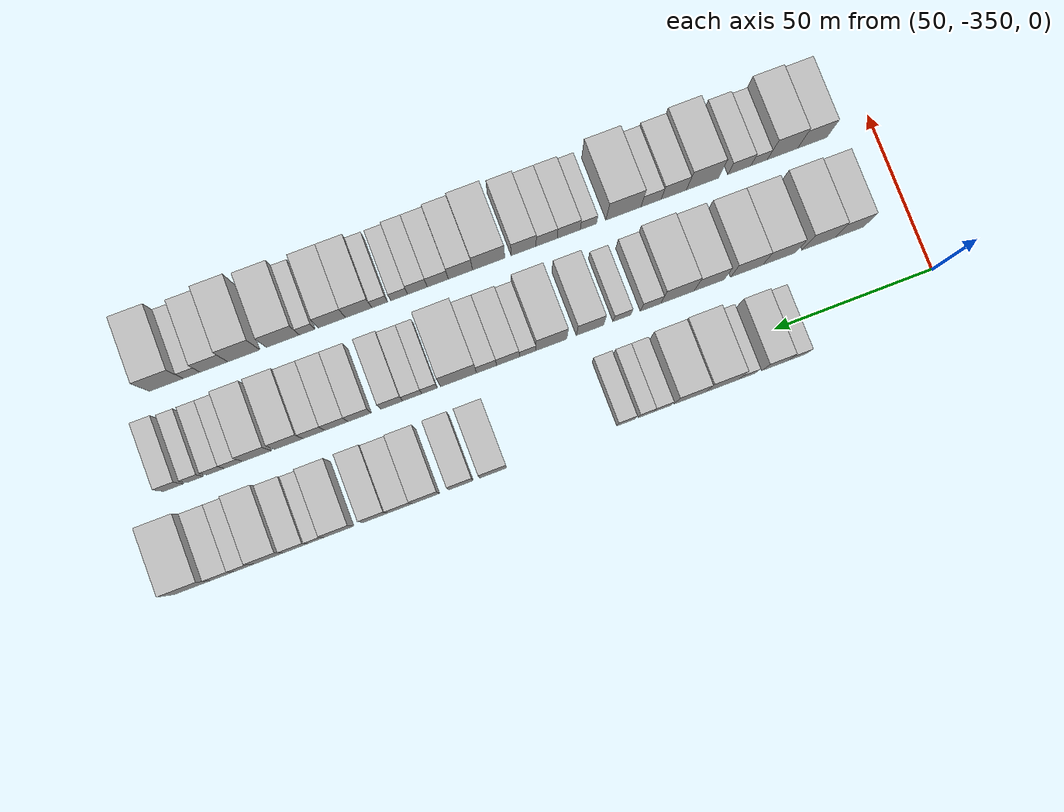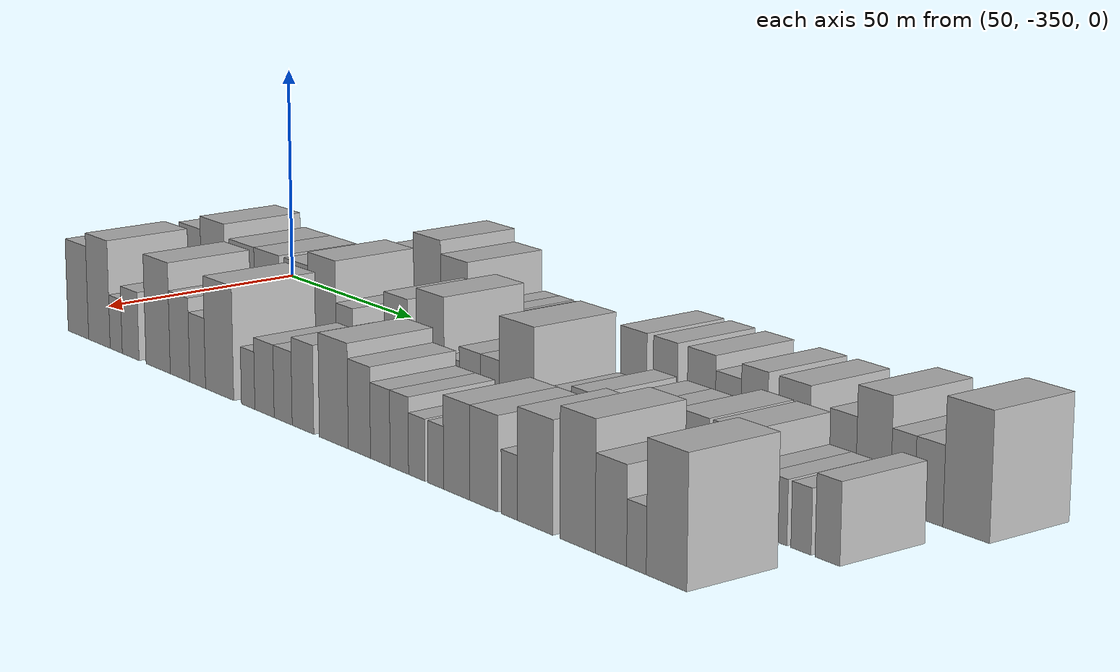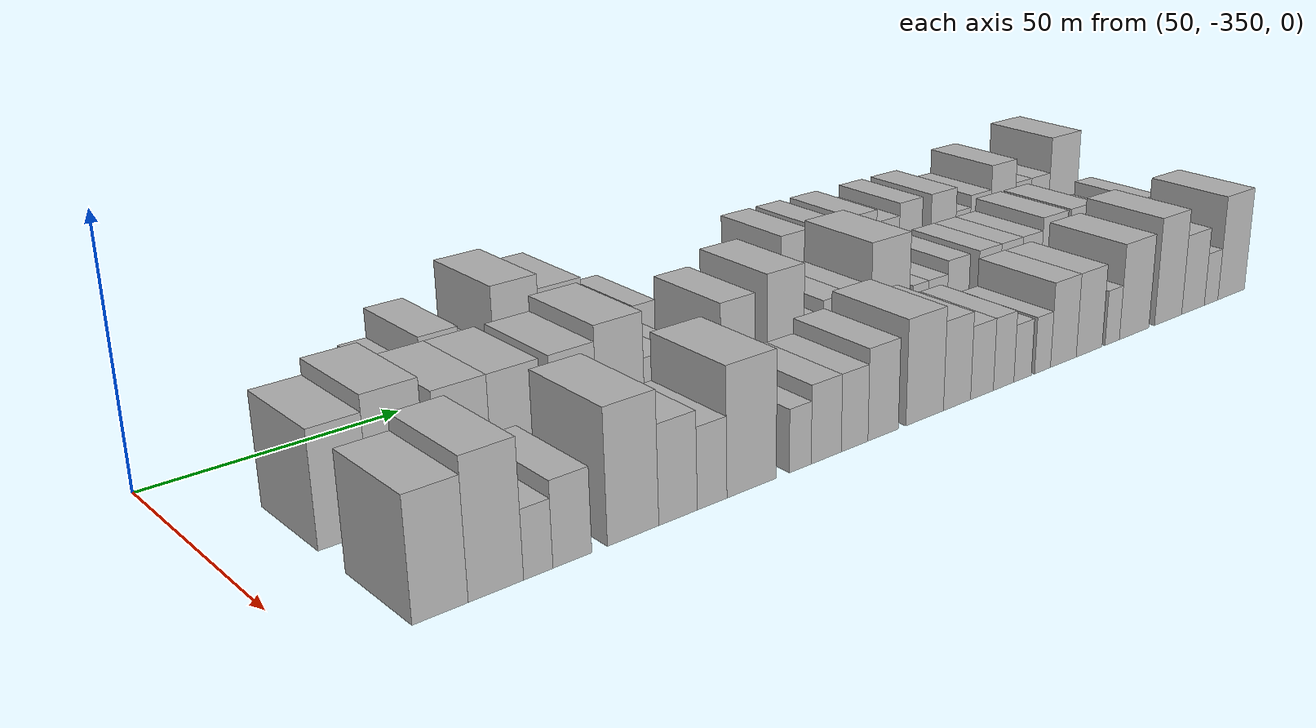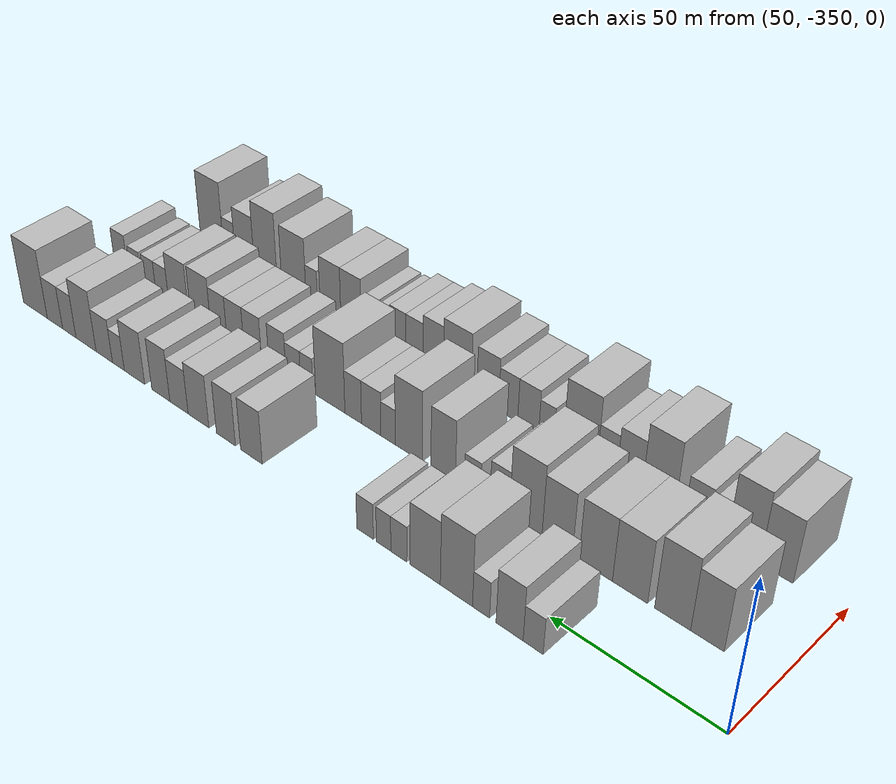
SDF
<sdf version="1.6">
 <world name="default">
  <model name="building_1">
   <static>1</static>
   <pose>50.0000 -303.0486 0 0.000000 0.000000 0.000000</pose>
   <link name="link">
    <pose>0 0 6.00 0 0 0</pose>
    <collision name="collision"><geometry><box><size>20.0000 5.9676 12.0000</size></box></geometry></collision>
    <visual name="visual">
     <cast_shadows>0</cast_shadows>
     <geometry><box><size>20.0000 5.9676 12.0000</size></box></geometry>
     <material>
      <script>
       <uri>model://HANNAS_wall/materials/scripts</uri>
       <uri>model://HANNAS_wall/materials/textures</uri>
       <name>vrc/HANNAS_wall</name>
      </script>
     </material>
    </visual>
   </link>
  </model>
  <model name="building_2">
   <static>1</static>
   <pose>50.0000 -295.9503 0 0.000000 0.000000 0.000000</pose>
   <link name="link">
    <pose>0 0 9.00 0 0 0</pose>
    <collision name="collision"><geometry><box><size>20.0000 8.2292 18.0000</size></box></geometry></collision>
    <visual name="visual">
     <cast_shadows>0</cast_shadows>
     <geometry><box><size>20.0000 8.2292 18.0000</size></box></geometry>
     <material>
      <script>
       <uri>model://HANNAS_wall/materials/scripts</uri>
       <uri>model://HANNAS_wall/materials/textures</uri>
       <name>vrc/HANNAS_wall</name>
      </script>
     </material>
    </visual>
   </link>
  </model>
  <model name="building_3">
   <static>1</static>
   <pose>50.0000 -287.1823 0 0.000000 0.000000 0.000000</pose>
   <link name="link">
    <pose>0 0 6.00 0 0 0</pose>
    <collision name="collision"><geometry><box><size>20.0000 5.3067 12.0000</size></box></geometry></collision>
    <visual name="visual">
     <cast_shadows>0</cast_shadows>
     <geometry><box><size>20.0000 5.3067 12.0000</size></box></geometry>
     <material>
      <script>
       <uri>model://HANNAS_wall/materials/scripts</uri>
       <uri>model://HANNAS_wall/materials/textures</uri>
       <name>vrc/HANNAS_wall</name>
      </script>
     </material>
    </visual>
   </link>
  </model>
  <model name="building_4">
   <static>1</static>
   <pose>50.0000 -279.3959 0 0.000000 0.000000 0.000000</pose>
   <link name="link">
    <pose>0 0 12.00 0 0 0</pose>
    <collision name="collision"><geometry><box><size>20.0000 10.2663 24.0000</size></box></geometry></collision>
    <visual name="visual">
     <cast_shadows>0</cast_shadows>
     <geometry><box><size>20.0000 10.2663 24.0000</size></box></geometry>
     <material>
      <script>
       <uri>model://HANNAS_wall/materials/scripts</uri>
       <uri>model://HANNAS_wall/materials/textures</uri>
       <name>vrc/HANNAS_wall</name>
      </script>
     </material>
    </visual>
   </link>
  </model>
  <model name="building_5">
   <static>1</static>
   <pose>50.0000 -269.2854 0 0.000000 0.000000 0.000000</pose>
   <link name="link">
    <pose>0 0 10.50 0 0 0</pose>
    <collision name="collision"><geometry><box><size>20.0000 9.9546 21.0000</size></box></geometry></collision>
    <visual name="visual">
     <cast_shadows>0</cast_shadows>
     <geometry><box><size>20.0000 9.9546 21.0000</size></box></geometry>
     <material>
      <script>
       <uri>model://HANNAS_wall/materials/scripts</uri>
       <uri>model://HANNAS_wall/materials/textures</uri>
       <name>vrc/HANNAS_wall</name>
      </script>
     </material>
    </visual>
   </link>
  </model>
  <model name="building_6">
   <static>1</static>
   <pose>50.0000 -260.6441 0 0.000000 0.000000 0.000000</pose>
   <link name="link">
    <pose>0 0 6.00 0 0 0</pose>
    <collision name="collision"><geometry><box><size>20.0000 5.3280 12.0000</size></box></geometry></collision>
    <visual name="visual">
     <cast_shadows>0</cast_shadows>
     <geometry><box><size>20.0000 5.3280 12.0000</size></box></geometry>
     <material>
      <script>
       <uri>model://HANNAS_wall/materials/scripts</uri>
       <uri>model://HANNAS_wall/materials/textures</uri>
       <name>vrc/HANNAS_wall</name>
      </script>
     </material>
    </visual>
   </link>
  </model>
  <model name="building_7">
   <static>1</static>
   <pose>50.0000 -255.5256 0 0.000000 0.000000 0.000000</pose>
   <link name="link">
    <pose>0 0 6.00 0 0 0</pose>
    <collision name="collision"><geometry><box><size>20.0000 4.9091 12.0000</size></box></geometry></collision>
    <visual name="visual">
     <cast_shadows>0</cast_shadows>
     <geometry><box><size>20.0000 4.9091 12.0000</size></box></geometry>
     <material>
      <script>
       <uri>model://HANNAS_wall/materials/scripts</uri>
       <uri>model://HANNAS_wall/materials/textures</uri>
       <name>vrc/HANNAS_wall</name>
      </script>
     </material>
    </visual>
   </link>
  </model>
  <model name="building_8">
   <static>1</static>
   <pose>50.0000 -249.2155 0 0.000000 0.000000 0.000000</pose>
   <link name="link">
    <pose>0 0 6.00 0 0 0</pose>
    <collision name="collision"><geometry><box><size>20.0000 5.7110 12.0000</size></box></geometry></collision>
    <visual name="visual">
     <cast_shadows>0</cast_shadows>
     <geometry><box><size>20.0000 5.7110 12.0000</size></box></geometry>
     <material>
      <script>
       <uri>model://HANNAS_wall/materials/scripts</uri>
       <uri>model://HANNAS_wall/materials/textures</uri>
       <name>vrc/HANNAS_wall</name>
      </script>
     </material>
    </visual>
   </link>
  </model>
  <model name="building_9">
   <static>1</static>
   <pose>50.0000 -207.9036 0 0.000000 0.000000 0.000000</pose>
   <link name="link">
    <pose>0 0 9.00 0 0 0</pose>
    <collision name="collision"><geometry><box><size>20.0000 8.3043 18.0000</size></box></geometry></collision>
    <visual name="visual">
     <cast_shadows>0</cast_shadows>
     <geometry><box><size>20.0000 8.3043 18.0000</size></box></geometry>
     <material>
      <script>
       <uri>model://HANNAS_wall/materials/scripts</uri>
       <uri>model://HANNAS_wall/materials/textures</uri>
       <name>vrc/HANNAS_wall</name>
      </script>
     </material>
    </visual>
   </link>
  </model>
  <model name="building_10">
   <static>1</static>
   <pose>50.0000 -198.0247 0 0.000000 0.000000 0.000000</pose>
   <link name="link">
    <pose>0 0 9.00 0 0 0</pose>
    <collision name="collision"><geometry><box><size>20.0000 7.4536 18.0000</size></box></geometry></collision>
    <visual name="visual">
     <cast_shadows>0</cast_shadows>
     <geometry><box><size>20.0000 7.4536 18.0000</size></box></geometry>
     <material>
      <script>
       <uri>model://HANNAS_wall/materials/scripts</uri>
       <uri>model://HANNAS_wall/materials/textures</uri>
       <name>vrc/HANNAS_wall</name>
      </script>
     </material>
    </visual>
   </link>
  </model>
  <model name="building_11">
   <static>1</static>
   <pose>50.0000 -187.1079 0 0.000000 0.000000 0.000000</pose>
   <link name="link">
    <pose>0 0 9.00 0 0 0</pose>
    <collision name="collision"><geometry><box><size>20.0000 8.3798 18.0000</size></box></geometry></collision>
    <visual name="visual">
     <cast_shadows>0</cast_shadows>
     <geometry><box><size>20.0000 8.3798 18.0000</size></box></geometry>
     <material>
      <script>
       <uri>model://HANNAS_wall/materials/scripts</uri>
       <uri>model://HANNAS_wall/materials/textures</uri>
       <name>vrc/HANNAS_wall</name>
      </script>
     </material>
    </visual>
   </link>
  </model>
  <model name="building_12">
   <static>1</static>
   <pose>50.0000 -179.1790 0 0.000000 0.000000 0.000000</pose>
   <link name="link">
    <pose>0 0 7.50 0 0 0</pose>
    <collision name="collision"><geometry><box><size>20.0000 7.4780 15.0000</size></box></geometry></collision>
    <visual name="visual">
     <cast_shadows>0</cast_shadows>
     <geometry><box><size>20.0000 7.4780 15.0000</size></box></geometry>
     <material>
      <script>
       <uri>model://HANNAS_wall/materials/scripts</uri>
       <uri>model://HANNAS_wall/materials/textures</uri>
       <name>vrc/HANNAS_wall</name>
      </script>
     </material>
    </visual>
   </link>
  </model>
  <model name="building_13">
   <static>1</static>
   <pose>50.0000 -171.6439 0 0.000000 0.000000 0.000000</pose>
   <link name="link">
    <pose>0 0 9.00 0 0 0</pose>
    <collision name="collision"><geometry><box><size>20.0000 7.5922 18.0000</size></box></geometry></collision>
    <visual name="visual">
     <cast_shadows>0</cast_shadows>
     <geometry><box><size>20.0000 7.5922 18.0000</size></box></geometry>
     <material>
      <script>
       <uri>model://HANNAS_wall/materials/scripts</uri>
       <uri>model://HANNAS_wall/materials/textures</uri>
       <name>vrc/HANNAS_wall</name>
      </script>
     </material>
    </visual>
   </link>
  </model>
  <model name="building_14">
   <static>1</static>
   <pose>50.0000 -160.4778 0 0.000000 0.000000 0.000000</pose>
   <link name="link">
    <pose>0 0 9.00 0 0 0</pose>
    <collision name="collision"><geometry><box><size>20.0000 8.7401 18.0000</size></box></geometry></collision>
    <visual name="visual">
     <cast_shadows>0</cast_shadows>
     <geometry><box><size>20.0000 8.7401 18.0000</size></box></geometry>
     <material>
      <script>
       <uri>model://HANNAS_wall/materials/scripts</uri>
       <uri>model://HANNAS_wall/materials/textures</uri>
       <name>vrc/HANNAS_wall</name>
      </script>
     </material>
    </visual>
   </link>
  </model>
  <model name="building_15">
   <static>1</static>
   <pose>50.0000 -153.5049 0 0.000000 0.000000 0.000000</pose>
   <link name="link">
    <pose>0 0 6.00 0 0 0</pose>
    <collision name="collision"><geometry><box><size>20.0000 5.2057 12.0000</size></box></geometry></collision>
    <visual name="visual">
     <cast_shadows>0</cast_shadows>
     <geometry><box><size>20.0000 5.2057 12.0000</size></box></geometry>
     <material>
      <script>
       <uri>model://HANNAS_wall/materials/scripts</uri>
       <uri>model://HANNAS_wall/materials/textures</uri>
       <name>vrc/HANNAS_wall</name>
      </script>
     </material>
    </visual>
   </link>
  </model>
  <model name="building_16">
   <static>1</static>
   <pose>50.0000 -147.2780 0 0.000000 0.000000 0.000000</pose>
   <link name="link">
    <pose>0 0 7.50 0 0 0</pose>
    <collision name="collision"><geometry><box><size>20.0000 7.2481 15.0000</size></box></geometry></collision>
    <visual name="visual">
     <cast_shadows>0</cast_shadows>
     <geometry><box><size>20.0000 7.2481 15.0000</size></box></geometry>
     <material>
      <script>
       <uri>model://HANNAS_wall/materials/scripts</uri>
       <uri>model://HANNAS_wall/materials/textures</uri>
       <name>vrc/HANNAS_wall</name>
      </script>
     </material>
    </visual>
   </link>
  </model>
  <model name="building_17">
   <static>1</static>
   <pose>50.0000 -139.1223 0 0.000000 0.000000 0.000000</pose>
   <link name="link">
    <pose>0 0 10.50 0 0 0</pose>
    <collision name="collision"><geometry><box><size>20.0000 9.0632 21.0000</size></box></geometry></collision>
    <visual name="visual">
     <cast_shadows>0</cast_shadows>
     <geometry><box><size>20.0000 9.0632 21.0000</size></box></geometry>
     <material>
      <script>
       <uri>model://HANNAS_wall/materials/scripts</uri>
       <uri>model://HANNAS_wall/materials/textures</uri>
       <name>vrc/HANNAS_wall</name>
      </script>
     </material>
    </visual>
   </link>
  </model>
  <model name="building_18">
   <static>1</static>
   <pose>50.0000 -131.5241 0 0.000000 0.000000 0.000000</pose>
   <link name="link">
    <pose>0 0 7.50 0 0 0</pose>
    <collision name="collision"><geometry><box><size>20.0000 6.1332 15.0000</size></box></geometry></collision>
    <visual name="visual">
     <cast_shadows>0</cast_shadows>
     <geometry><box><size>20.0000 6.1332 15.0000</size></box></geometry>
     <material>
      <script>
       <uri>model://HANNAS_wall/materials/scripts</uri>
       <uri>model://HANNAS_wall/materials/textures</uri>
       <name>vrc/HANNAS_wall</name>
      </script>
     </material>
    </visual>
   </link>
  </model>
  <model name="building_19">
   <static>1</static>
   <pose>50.0000 -124.9037 0 0.000000 0.000000 0.000000</pose>
   <link name="link">
    <pose>0 0 7.50 0 0 0</pose>
    <collision name="collision"><geometry><box><size>20.0000 7.1077 15.0000</size></box></geometry></collision>
    <visual name="visual">
     <cast_shadows>0</cast_shadows>
     <geometry><box><size>20.0000 7.1077 15.0000</size></box></geometry>
     <material>
      <script>
       <uri>model://HANNAS_wall/materials/scripts</uri>
       <uri>model://HANNAS_wall/materials/textures</uri>
       <name>vrc/HANNAS_wall</name>
      </script>
     </material>
    </visual>
   </link>
  </model>
  <model name="building_20">
   <static>1</static>
   <pose>50.0000 -115.6766 0 0.000000 0.000000 0.000000</pose>
   <link name="link">
    <pose>0 0 12.00 0 0 0</pose>
    <collision name="collision"><geometry><box><size>20.0000 11.3465 24.0000</size></box></geometry></collision>
    <visual name="visual">
     <cast_shadows>0</cast_shadows>
     <geometry><box><size>20.0000 11.3465 24.0000</size></box></geometry>
     <material>
      <script>
       <uri>model://HANNAS_wall/materials/scripts</uri>
       <uri>model://HANNAS_wall/materials/textures</uri>
       <name>vrc/HANNAS_wall</name>
      </script>
     </material>
    </visual>
   </link>
  </model>
  <model name="building_69">
   <static>1</static>
   <pose>79.0000 -331.3128 0 0.000000 0.000000 0.000000</pose>
   <link name="link">
    <pose>0 0 10.50 0 0 0</pose>
    <collision name="collision"><geometry><box><size>20.0000 9.3744 21.0000</size></box></geometry></collision>
    <visual name="visual">
     <cast_shadows>0</cast_shadows>
     <geometry><box><size>20.0000 9.3744 21.0000</size></box></geometry>
     <material>
      <script>
       <uri>model://HANNAS_wall/materials/scripts</uri>
       <uri>model://HANNAS_wall/materials/textures</uri>
       <name>vrc/HANNAS_wall</name>
      </script>
     </material>
    </visual>
   </link>
  </model>
  <model name="building_70">
   <static>1</static>
   <pose>79.0000 -321.4560 0 0.000000 0.000000 0.000000</pose>
   <link name="link">
    <pose>0 0 12.00 0 0 0</pose>
    <collision name="collision"><geometry><box><size>20.0000 10.3391 24.0000</size></box></geometry></collision>
    <visual name="visual">
     <cast_shadows>0</cast_shadows>
     <geometry><box><size>20.0000 10.3391 24.0000</size></box></geometry>
     <material>
      <script>
       <uri>model://HANNAS_wall/materials/scripts</uri>
       <uri>model://HANNAS_wall/materials/textures</uri>
       <name>vrc/HANNAS_wall</name>
      </script>
     </material>
    </visual>
   </link>
  </model>
  <model name="building_71">
   <static>1</static>
   <pose>79.0000 -309.0583 0 0.000000 0.000000 0.000000</pose>
   <link name="link">
    <pose>0 0 10.50 0 0 0</pose>
    <collision name="collision"><geometry><box><size>20.0000 10.4563 21.0000</size></box></geometry></collision>
    <visual name="visual">
     <cast_shadows>0</cast_shadows>
     <geometry><box><size>20.0000 10.4563 21.0000</size></box></geometry>
     <material>
      <script>
       <uri>model://HANNAS_wall/materials/scripts</uri>
       <uri>model://HANNAS_wall/materials/textures</uri>
       <name>vrc/HANNAS_wall</name>
      </script>
     </material>
    </visual>
   </link>
  </model>
  <model name="building_72">
   <static>1</static>
   <pose>79.0000 -298.7084 0 0.000000 0.000000 0.000000</pose>
   <link name="link">
    <pose>0 0 10.50 0 0 0</pose>
    <collision name="collision"><geometry><box><size>20.0000 10.2435 21.0000</size></box></geometry></collision>
    <visual name="visual">
     <cast_shadows>0</cast_shadows>
     <geometry><box><size>20.0000 10.2435 21.0000</size></box></geometry>
     <material>
      <script>
       <uri>model://HANNAS_wall/materials/scripts</uri>
       <uri>model://HANNAS_wall/materials/textures</uri>
       <name>vrc/HANNAS_wall</name>
      </script>
     </material>
    </visual>
   </link>
  </model>
  <model name="building_73">
   <static>1</static>
   <pose>79.0000 -286.7996 0 0.000000 0.000000 0.000000</pose>
   <link name="link">
    <pose>0 0 10.50 0 0 0</pose>
    <collision name="collision"><geometry><box><size>20.0000 9.5743 21.0000</size></box></geometry></collision>
    <visual name="visual">
     <cast_shadows>0</cast_shadows>
     <geometry><box><size>20.0000 9.5743 21.0000</size></box></geometry>
     <material>
      <script>
       <uri>model://HANNAS_wall/materials/scripts</uri>
       <uri>model://HANNAS_wall/materials/textures</uri>
       <name>vrc/HANNAS_wall</name>
      </script>
     </material>
    </visual>
   </link>
  </model>
  <model name="building_74">
   <static>1</static>
   <pose>79.0000 -276.7387 0 0.000000 0.000000 0.000000</pose>
   <link name="link">
    <pose>0 0 12.00 0 0 0</pose>
    <collision name="collision"><geometry><box><size>20.0000 10.5474 24.0000</size></box></geometry></collision>
    <visual name="visual">
     <cast_shadows>0</cast_shadows>
     <geometry><box><size>20.0000 10.5474 24.0000</size></box></geometry>
     <material>
      <script>
       <uri>model://HANNAS_wall/materials/scripts</uri>
       <uri>model://HANNAS_wall/materials/textures</uri>
       <name>vrc/HANNAS_wall</name>
      </script>
     </material>
    </visual>
   </link>
  </model>
  <model name="building_75">
   <static>1</static>
   <pose>79.0000 -268.2380 0 0.000000 0.000000 0.000000</pose>
   <link name="link">
    <pose>0 0 7.50 0 0 0</pose>
    <collision name="collision"><geometry><box><size>20.0000 6.4539 15.0000</size></box></geometry></collision>
    <visual name="visual">
     <cast_shadows>0</cast_shadows>
     <geometry><box><size>20.0000 6.4539 15.0000</size></box></geometry>
     <material>
      <script>
       <uri>model://HANNAS_wall/materials/scripts</uri>
       <uri>model://HANNAS_wall/materials/textures</uri>
       <name>vrc/HANNAS_wall</name>
      </script>
     </material>
    </visual>
   </link>
  </model>
  <model name="building_76">
   <static>1</static>
   <pose>79.0000 -259.2029 0 0.000000 0.000000 0.000000</pose>
   <link name="link">
    <pose>0 0 6.00 0 0 0</pose>
    <collision name="collision"><geometry><box><size>20.0000 5.6164 12.0000</size></box></geometry></collision>
    <visual name="visual">
     <cast_shadows>0</cast_shadows>
     <geometry><box><size>20.0000 5.6164 12.0000</size></box></geometry>
     <material>
      <script>
       <uri>model://HANNAS_wall/materials/scripts</uri>
       <uri>model://HANNAS_wall/materials/textures</uri>
       <name>vrc/HANNAS_wall</name>
      </script>
     </material>
    </visual>
   </link>
  </model>
  <model name="building_77">
   <static>1</static>
   <pose>79.0000 -249.1245 0 0.000000 0.000000 0.000000</pose>
   <link name="link">
    <pose>0 0 10.50 0 0 0</pose>
    <collision name="collision"><geometry><box><size>20.0000 8.5404 21.0000</size></box></geometry></collision>
    <visual name="visual">
     <cast_shadows>0</cast_shadows>
     <geometry><box><size>20.0000 8.5404 21.0000</size></box></geometry>
     <material>
      <script>
       <uri>model://HANNAS_wall/materials/scripts</uri>
       <uri>model://HANNAS_wall/materials/textures</uri>
       <name>vrc/HANNAS_wall</name>
      </script>
     </material>
    </visual>
   </link>
  </model>
  <model name="building_78">
   <static>1</static>
   <pose>79.0000 -237.0167 0 0.000000 0.000000 0.000000</pose>
   <link name="link">
    <pose>0 0 12.00 0 0 0</pose>
    <collision name="collision"><geometry><box><size>20.0000 9.6752 24.0000</size></box></geometry></collision>
    <visual name="visual">
     <cast_shadows>0</cast_shadows>
     <geometry><box><size>20.0000 9.6752 24.0000</size></box></geometry>
     <material>
      <script>
       <uri>model://HANNAS_wall/materials/scripts</uri>
       <uri>model://HANNAS_wall/materials/textures</uri>
       <name>vrc/HANNAS_wall</name>
      </script>
     </material>
    </visual>
   </link>
  </model>
  <model name="building_79">
   <static>1</static>
   <pose>79.0000 -229.5910 0 0.000000 0.000000 0.000000</pose>
   <link name="link">
    <pose>0 0 6.00 0 0 0</pose>
    <collision name="collision"><geometry><box><size>20.0000 5.1763 12.0000</size></box></geometry></collision>
    <visual name="visual">
     <cast_shadows>0</cast_shadows>
     <geometry><box><size>20.0000 5.1763 12.0000</size></box></geometry>
     <material>
      <script>
       <uri>model://HANNAS_wall/materials/scripts</uri>
       <uri>model://HANNAS_wall/materials/textures</uri>
       <name>vrc/HANNAS_wall</name>
      </script>
     </material>
    </visual>
   </link>
  </model>
  <model name="building_80">
   <static>1</static>
   <pose>79.0000 -223.4374 0 0.000000 0.000000 0.000000</pose>
   <link name="link">
    <pose>0 0 7.50 0 0 0</pose>
    <collision name="collision"><geometry><box><size>20.0000 7.1310 15.0000</size></box></geometry></collision>
    <visual name="visual">
     <cast_shadows>0</cast_shadows>
     <geometry><box><size>20.0000 7.1310 15.0000</size></box></geometry>
     <material>
      <script>
       <uri>model://HANNAS_wall/materials/scripts</uri>
       <uri>model://HANNAS_wall/materials/textures</uri>
       <name>vrc/HANNAS_wall</name>
      </script>
     </material>
    </visual>
   </link>
  </model>
  <model name="building_81">
   <static>1</static>
   <pose>79.0000 -216.7555 0 0.000000 0.000000 0.000000</pose>
   <link name="link">
    <pose>0 0 7.50 0 0 0</pose>
    <collision name="collision"><geometry><box><size>20.0000 6.2327 15.0000</size></box></geometry></collision>
    <visual name="visual">
     <cast_shadows>0</cast_shadows>
     <geometry><box><size>20.0000 6.2327 15.0000</size></box></geometry>
     <material>
      <script>
       <uri>model://HANNAS_wall/materials/scripts</uri>
       <uri>model://HANNAS_wall/materials/textures</uri>
       <name>vrc/HANNAS_wall</name>
      </script>
     </material>
    </visual>
   </link>
  </model>
  <model name="building_82">
   <static>1</static>
   <pose>79.0000 -208.0355 0 0.000000 0.000000 0.000000</pose>
   <link name="link">
    <pose>0 0 12.00 0 0 0</pose>
    <collision name="collision"><geometry><box><size>20.0000 11.2073 24.0000</size></box></geometry></collision>
    <visual name="visual">
     <cast_shadows>0</cast_shadows>
     <geometry><box><size>20.0000 11.2073 24.0000</size></box></geometry>
     <material>
      <script>
       <uri>model://HANNAS_wall/materials/scripts</uri>
       <uri>model://HANNAS_wall/materials/textures</uri>
       <name>vrc/HANNAS_wall</name>
      </script>
     </material>
    </visual>
   </link>
  </model>
  <model name="building_83">
   <static>1</static>
   <pose>79.0000 -199.0201 0 0.000000 0.000000 0.000000</pose>
   <link name="link">
    <pose>0 0 6.00 0 0 0</pose>
    <collision name="collision"><geometry><box><size>20.0000 4.8236 12.0000</size></box></geometry></collision>
    <visual name="visual">
     <cast_shadows>0</cast_shadows>
     <geometry><box><size>20.0000 4.8236 12.0000</size></box></geometry>
     <material>
      <script>
       <uri>model://HANNAS_wall/materials/scripts</uri>
       <uri>model://HANNAS_wall/materials/textures</uri>
       <name>vrc/HANNAS_wall</name>
      </script>
     </material>
    </visual>
   </link>
  </model>
  <model name="building_84">
   <static>1</static>
   <pose>79.0000 -193.6619 0 0.000000 0.000000 0.000000</pose>
   <link name="link">
    <pose>0 0 6.00 0 0 0</pose>
    <collision name="collision"><geometry><box><size>20.0000 5.8927 12.0000</size></box></geometry></collision>
    <visual name="visual">
     <cast_shadows>0</cast_shadows>
     <geometry><box><size>20.0000 5.8927 12.0000</size></box></geometry>
     <material>
      <script>
       <uri>model://HANNAS_wall/materials/scripts</uri>
       <uri>model://HANNAS_wall/materials/textures</uri>
       <name>vrc/HANNAS_wall</name>
      </script>
     </material>
    </visual>
   </link>
  </model>
  <model name="building_85">
   <static>1</static>
   <pose>79.0000 -187.2942 0 0.000000 0.000000 0.000000</pose>
   <link name="link">
    <pose>0 0 7.50 0 0 0</pose>
    <collision name="collision"><geometry><box><size>20.0000 6.8426 15.0000</size></box></geometry></collision>
    <visual name="visual">
     <cast_shadows>0</cast_shadows>
     <geometry><box><size>20.0000 6.8426 15.0000</size></box></geometry>
     <material>
      <script>
       <uri>model://HANNAS_wall/materials/scripts</uri>
       <uri>model://HANNAS_wall/materials/textures</uri>
       <name>vrc/HANNAS_wall</name>
      </script>
     </material>
    </visual>
   </link>
  </model>
  <model name="building_86">
   <static>1</static>
   <pose>79.0000 -177.2601 0 0.000000 0.000000 0.000000</pose>
   <link name="link">
    <pose>0 0 7.50 0 0 0</pose>
    <collision name="collision"><geometry><box><size>20.0000 7.2257 15.0000</size></box></geometry></collision>
    <visual name="visual">
     <cast_shadows>0</cast_shadows>
     <geometry><box><size>20.0000 7.2257 15.0000</size></box></geometry>
     <material>
      <script>
       <uri>model://HANNAS_wall/materials/scripts</uri>
       <uri>model://HANNAS_wall/materials/textures</uri>
       <name>vrc/HANNAS_wall</name>
      </script>
     </material>
    </visual>
   </link>
  </model>
  <model name="building_87">
   <static>1</static>
   <pose>79.0000 -170.0598 0 0.000000 0.000000 0.000000</pose>
   <link name="link">
    <pose>0 0 7.50 0 0 0</pose>
    <collision name="collision"><geometry><box><size>20.0000 7.1750 15.0000</size></box></geometry></collision>
    <visual name="visual">
     <cast_shadows>0</cast_shadows>
     <geometry><box><size>20.0000 7.1750 15.0000</size></box></geometry>
     <material>
      <script>
       <uri>model://HANNAS_wall/materials/scripts</uri>
       <uri>model://HANNAS_wall/materials/textures</uri>
       <name>vrc/HANNAS_wall</name>
      </script>
     </material>
    </visual>
   </link>
  </model>
  <model name="building_88">
   <static>1</static>
   <pose>79.0000 -163.0682 0 0.000000 0.000000 0.000000</pose>
   <link name="link">
    <pose>0 0 7.50 0 0 0</pose>
    <collision name="collision"><geometry><box><size>20.0000 6.8081 15.0000</size></box></geometry></collision>
    <visual name="visual">
     <cast_shadows>0</cast_shadows>
     <geometry><box><size>20.0000 6.8081 15.0000</size></box></geometry>
     <material>
      <script>
       <uri>model://HANNAS_wall/materials/scripts</uri>
       <uri>model://HANNAS_wall/materials/textures</uri>
       <name>vrc/HANNAS_wall</name>
      </script>
     </material>
    </visual>
   </link>
  </model>
  <model name="building_89">
   <static>1</static>
   <pose>79.0000 -155.3139 0 0.000000 0.000000 0.000000</pose>
   <link name="link">
    <pose>0 0 9.00 0 0 0</pose>
    <collision name="collision"><geometry><box><size>20.0000 8.7005 18.0000</size></box></geometry></collision>
    <visual name="visual">
     <cast_shadows>0</cast_shadows>
     <geometry><box><size>20.0000 8.7005 18.0000</size></box></geometry>
     <material>
      <script>
       <uri>model://HANNAS_wall/materials/scripts</uri>
       <uri>model://HANNAS_wall/materials/textures</uri>
       <name>vrc/HANNAS_wall</name>
      </script>
     </material>
    </visual>
   </link>
  </model>
  <model name="building_90">
   <static>1</static>
   <pose>79.0000 -145.5739 0 0.000000 0.000000 0.000000</pose>
   <link name="link">
    <pose>0 0 9.00 0 0 0</pose>
    <collision name="collision"><geometry><box><size>20.0000 8.7796 18.0000</size></box></geometry></collision>
    <visual name="visual">
     <cast_shadows>0</cast_shadows>
     <geometry><box><size>20.0000 8.7796 18.0000</size></box></geometry>
     <material>
      <script>
       <uri>model://HANNAS_wall/materials/scripts</uri>
       <uri>model://HANNAS_wall/materials/textures</uri>
       <name>vrc/HANNAS_wall</name>
      </script>
     </material>
    </visual>
   </link>
  </model>
  <model name="building_91">
   <static>1</static>
   <pose>79.0000 -138.3351 0 0.000000 0.000000 0.000000</pose>
   <link name="link">
    <pose>0 0 6.00 0 0 0</pose>
    <collision name="collision"><geometry><box><size>20.0000 5.6979 12.0000</size></box></geometry></collision>
    <visual name="visual">
     <cast_shadows>0</cast_shadows>
     <geometry><box><size>20.0000 5.6979 12.0000</size></box></geometry>
     <material>
      <script>
       <uri>model://HANNAS_wall/materials/scripts</uri>
       <uri>model://HANNAS_wall/materials/textures</uri>
       <name>vrc/HANNAS_wall</name>
      </script>
     </material>
    </visual>
   </link>
  </model>
  <model name="building_92">
   <static>1</static>
   <pose>79.0000 -132.7585 0 0.000000 0.000000 0.000000</pose>
   <link name="link">
    <pose>0 0 6.00 0 0 0</pose>
    <collision name="collision"><geometry><box><size>20.0000 5.4553 12.0000</size></box></geometry></collision>
    <visual name="visual">
     <cast_shadows>0</cast_shadows>
     <geometry><box><size>20.0000 5.4553 12.0000</size></box></geometry>
     <material>
      <script>
       <uri>model://HANNAS_wall/materials/scripts</uri>
       <uri>model://HANNAS_wall/materials/textures</uri>
       <name>vrc/HANNAS_wall</name>
      </script>
     </material>
    </visual>
   </link>
  </model>
  <model name="building_93">
   <static>1</static>
   <pose>79.0000 -126.4665 0 0.000000 0.000000 0.000000</pose>
   <link name="link">
    <pose>0 0 6.00 0 0 0</pose>
    <collision name="collision"><geometry><box><size>20.0000 5.1287 12.0000</size></box></geometry></collision>
    <visual name="visual">
     <cast_shadows>0</cast_shadows>
     <geometry><box><size>20.0000 5.1287 12.0000</size></box></geometry>
     <material>
      <script>
       <uri>model://HANNAS_wall/materials/scripts</uri>
       <uri>model://HANNAS_wall/materials/textures</uri>
       <name>vrc/HANNAS_wall</name>
      </script>
     </material>
    </visual>
   </link>
  </model>
  <model name="building_94">
   <static>1</static>
   <pose>79.0000 -119.8059 0 0.000000 0.000000 0.000000</pose>
   <link name="link">
    <pose>0 0 7.50 0 0 0</pose>
    <collision name="collision"><geometry><box><size>20.0000 6.1925 15.0000</size></box></geometry></collision>
    <visual name="visual">
     <cast_shadows>0</cast_shadows>
     <geometry><box><size>20.0000 6.1925 15.0000</size></box></geometry>
     <material>
      <script>
       <uri>model://HANNAS_wall/materials/scripts</uri>
       <uri>model://HANNAS_wall/materials/textures</uri>
       <name>vrc/HANNAS_wall</name>
      </script>
     </material>
    </visual>
   </link>
  </model>
  <model name="building_144">
   <static>1</static>
   <pose>108.0000 -331.2974 0 0.000000 0.000000 0.000000</pose>
   <link name="link">
    <pose>0 0 10.50 0 0 0</pose>
    <collision name="collision"><geometry><box><size>20.0000 9.4052 21.0000</size></box></geometry></collision>
    <visual name="visual">
     <cast_shadows>0</cast_shadows>
     <geometry><box><size>20.0000 9.4052 21.0000</size></box></geometry>
     <material>
      <script>
       <uri>model://HANNAS_wall/materials/scripts</uri>
       <uri>model://HANNAS_wall/materials/textures</uri>
       <name>vrc/HANNAS_wall</name>
      </script>
     </material>
    </visual>
   </link>
  </model>
  <model name="building_145">
   <static>1</static>
   <pose>108.0000 -321.7428 0 0.000000 0.000000 0.000000</pose>
   <link name="link">
    <pose>0 0 12.00 0 0 0</pose>
    <collision name="collision"><geometry><box><size>20.0000 9.7040 24.0000</size></box></geometry></collision>
    <visual name="visual">
     <cast_shadows>0</cast_shadows>
     <geometry><box><size>20.0000 9.7040 24.0000</size></box></geometry>
     <material>
      <script>
       <uri>model://HANNAS_wall/materials/scripts</uri>
       <uri>model://HANNAS_wall/materials/textures</uri>
       <name>vrc/HANNAS_wall</name>
      </script>
     </material>
    </visual>
   </link>
  </model>
  <model name="building_146">
   <static>1</static>
   <pose>108.0000 -314.2177 0 0.000000 0.000000 0.000000</pose>
   <link name="link">
    <pose>0 0 6.00 0 0 0</pose>
    <collision name="collision"><geometry><box><size>20.0000 5.3462 12.0000</size></box></geometry></collision>
    <visual name="visual">
     <cast_shadows>0</cast_shadows>
     <geometry><box><size>20.0000 5.3462 12.0000</size></box></geometry>
     <material>
      <script>
       <uri>model://HANNAS_wall/materials/scripts</uri>
       <uri>model://HANNAS_wall/materials/textures</uri>
       <name>vrc/HANNAS_wall</name>
      </script>
     </material>
    </visual>
   </link>
  </model>
  <model name="building_147">
   <static>1</static>
   <pose>108.0000 -307.8885 0 0.000000 0.000000 0.000000</pose>
   <link name="link">
    <pose>0 0 7.50 0 0 0</pose>
    <collision name="collision"><geometry><box><size>20.0000 7.3121 15.0000</size></box></geometry></collision>
    <visual name="visual">
     <cast_shadows>0</cast_shadows>
     <geometry><box><size>20.0000 7.3121 15.0000</size></box></geometry>
     <material>
      <script>
       <uri>model://HANNAS_wall/materials/scripts</uri>
       <uri>model://HANNAS_wall/materials/textures</uri>
       <name>vrc/HANNAS_wall</name>
      </script>
     </material>
    </visual>
   </link>
  </model>
  <model name="building_148">
   <static>1</static>
   <pose>108.0000 -296.1042 0 0.000000 0.000000 0.000000</pose>
   <link name="link">
    <pose>0 0 12.00 0 0 0</pose>
    <collision name="collision"><geometry><box><size>20.0000 10.2566 24.0000</size></box></geometry></collision>
    <visual name="visual">
     <cast_shadows>0</cast_shadows>
     <geometry><box><size>20.0000 10.2566 24.0000</size></box></geometry>
     <material>
      <script>
       <uri>model://HANNAS_wall/materials/scripts</uri>
       <uri>model://HANNAS_wall/materials/textures</uri>
       <name>vrc/HANNAS_wall</name>
      </script>
     </material>
    </visual>
   </link>
  </model>
  <model name="building_149">
   <static>1</static>
   <pose>108.0000 -286.9594 0 0.000000 0.000000 0.000000</pose>
   <link name="link">
    <pose>0 0 9.00 0 0 0</pose>
    <collision name="collision"><geometry><box><size>20.0000 8.0330 18.0000</size></box></geometry></collision>
    <visual name="visual">
     <cast_shadows>0</cast_shadows>
     <geometry><box><size>20.0000 8.0330 18.0000</size></box></geometry>
     <material>
      <script>
       <uri>model://HANNAS_wall/materials/scripts</uri>
       <uri>model://HANNAS_wall/materials/textures</uri>
       <name>vrc/HANNAS_wall</name>
      </script>
     </material>
    </visual>
   </link>
  </model>
  <model name="building_150">
   <static>1</static>
   <pose>108.0000 -279.7465 0 0.000000 0.000000 0.000000</pose>
   <link name="link">
    <pose>0 0 7.50 0 0 0</pose>
    <collision name="collision"><geometry><box><size>20.0000 6.3928 15.0000</size></box></geometry></collision>
    <visual name="visual">
     <cast_shadows>0</cast_shadows>
     <geometry><box><size>20.0000 6.3928 15.0000</size></box></geometry>
     <material>
      <script>
       <uri>model://HANNAS_wall/materials/scripts</uri>
       <uri>model://HANNAS_wall/materials/textures</uri>
       <name>vrc/HANNAS_wall</name>
      </script>
     </material>
    </visual>
   </link>
  </model>
  <model name="building_151">
   <static>1</static>
   <pose>108.0000 -270.9744 0 0.000000 0.000000 0.000000</pose>
   <link name="link">
    <pose>0 0 12.00 0 0 0</pose>
    <collision name="collision"><geometry><box><size>20.0000 11.1514 24.0000</size></box></geometry></collision>
    <visual name="visual">
     <cast_shadows>0</cast_shadows>
     <geometry><box><size>20.0000 11.1514 24.0000</size></box></geometry>
     <material>
      <script>
       <uri>model://HANNAS_wall/materials/scripts</uri>
       <uri>model://HANNAS_wall/materials/textures</uri>
       <name>vrc/HANNAS_wall</name>
      </script>
     </material>
    </visual>
   </link>
  </model>
  <model name="building_152">
   <static>1</static>
   <pose>108.0000 -259.8179 0 0.000000 0.000000 0.000000</pose>
   <link name="link">
    <pose>0 0 6.00 0 0 0</pose>
    <collision name="collision"><geometry><box><size>20.0000 5.1615 12.0000</size></box></geometry></collision>
    <visual name="visual">
     <cast_shadows>0</cast_shadows>
     <geometry><box><size>20.0000 5.1615 12.0000</size></box></geometry>
     <material>
      <script>
       <uri>model://HANNAS_wall/materials/scripts</uri>
       <uri>model://HANNAS_wall/materials/textures</uri>
       <name>vrc/HANNAS_wall</name>
      </script>
     </material>
    </visual>
   </link>
  </model>
  <model name="building_153">
   <static>1</static>
   <pose>108.0000 -253.5974 0 0.000000 0.000000 0.000000</pose>
   <link name="link">
    <pose>0 0 7.50 0 0 0</pose>
    <collision name="collision"><geometry><box><size>20.0000 7.2795 15.0000</size></box></geometry></collision>
    <visual name="visual">
     <cast_shadows>0</cast_shadows>
     <geometry><box><size>20.0000 7.2795 15.0000</size></box></geometry>
     <material>
      <script>
       <uri>model://HANNAS_wall/materials/scripts</uri>
       <uri>model://HANNAS_wall/materials/textures</uri>
       <name>vrc/HANNAS_wall</name>
      </script>
     </material>
    </visual>
   </link>
  </model>
  <model name="building_154">
   <static>1</static>
   <pose>108.0000 -246.6185 0 0.000000 0.000000 0.000000</pose>
   <link name="link">
    <pose>0 0 7.50 0 0 0</pose>
    <collision name="collision"><geometry><box><size>20.0000 6.6782 15.0000</size></box></geometry></collision>
    <visual name="visual">
     <cast_shadows>0</cast_shadows>
     <geometry><box><size>20.0000 6.6782 15.0000</size></box></geometry>
     <material>
      <script>
       <uri>model://HANNAS_wall/materials/scripts</uri>
       <uri>model://HANNAS_wall/materials/textures</uri>
       <name>vrc/HANNAS_wall</name>
      </script>
     </material>
    </visual>
   </link>
  </model>
  <model name="building_155">
   <static>1</static>
   <pose>108.0000 -239.3465 0 0.000000 0.000000 0.000000</pose>
   <link name="link">
    <pose>0 0 9.00 0 0 0</pose>
    <collision name="collision"><geometry><box><size>20.0000 7.8659 18.0000</size></box></geometry></collision>
    <visual name="visual">
     <cast_shadows>0</cast_shadows>
     <geometry><box><size>20.0000 7.8659 18.0000</size></box></geometry>
     <material>
      <script>
       <uri>model://HANNAS_wall/materials/scripts</uri>
       <uri>model://HANNAS_wall/materials/textures</uri>
       <name>vrc/HANNAS_wall</name>
      </script>
     </material>
    </visual>
   </link>
  </model>
  <model name="building_156">
   <static>1</static>
   <pose>108.0000 -228.3262 0 0.000000 0.000000 0.000000</pose>
   <link name="link">
    <pose>0 0 10.50 0 0 0</pose>
    <collision name="collision"><geometry><box><size>20.0000 10.1747 21.0000</size></box></geometry></collision>
    <visual name="visual">
     <cast_shadows>0</cast_shadows>
     <geometry><box><size>20.0000 10.1747 21.0000</size></box></geometry>
     <material>
      <script>
       <uri>model://HANNAS_wall/materials/scripts</uri>
       <uri>model://HANNAS_wall/materials/textures</uri>
       <name>vrc/HANNAS_wall</name>
      </script>
     </material>
    </visual>
   </link>
  </model>
  <model name="building_157">
   <static>1</static>
   <pose>108.0000 -219.4236 0 0.000000 0.000000 0.000000</pose>
   <link name="link">
    <pose>0 0 9.00 0 0 0</pose>
    <collision name="collision"><geometry><box><size>20.0000 7.6304 18.0000</size></box></geometry></collision>
    <visual name="visual">
     <cast_shadows>0</cast_shadows>
     <geometry><box><size>20.0000 7.6304 18.0000</size></box></geometry>
     <material>
      <script>
       <uri>model://HANNAS_wall/materials/scripts</uri>
       <uri>model://HANNAS_wall/materials/textures</uri>
       <name>vrc/HANNAS_wall</name>
      </script>
     </material>
    </visual>
   </link>
  </model>
  <model name="building_158">
   <static>1</static>
   <pose>108.0000 -212.3087 0 0.000000 0.000000 0.000000</pose>
   <link name="link">
    <pose>0 0 7.50 0 0 0</pose>
    <collision name="collision"><geometry><box><size>20.0000 6.5995 15.0000</size></box></geometry></collision>
    <visual name="visual">
     <cast_shadows>0</cast_shadows>
     <geometry><box><size>20.0000 6.5995 15.0000</size></box></geometry>
     <material>
      <script>
       <uri>model://HANNAS_wall/materials/scripts</uri>
       <uri>model://HANNAS_wall/materials/textures</uri>
       <name>vrc/HANNAS_wall</name>
      </script>
     </material>
    </visual>
   </link>
  </model>
  <model name="building_159">
   <static>1</static>
   <pose>108.0000 -205.9595 0 0.000000 0.000000 0.000000</pose>
   <link name="link">
    <pose>0 0 7.50 0 0 0</pose>
    <collision name="collision"><geometry><box><size>20.0000 6.0990 15.0000</size></box></geometry></collision>
    <visual name="visual">
     <cast_shadows>0</cast_shadows>
     <geometry><box><size>20.0000 6.0990 15.0000</size></box></geometry>
     <material>
      <script>
       <uri>model://HANNAS_wall/materials/scripts</uri>
       <uri>model://HANNAS_wall/materials/textures</uri>
       <name>vrc/HANNAS_wall</name>
      </script>
     </material>
    </visual>
   </link>
  </model>
  <model name="building_160">
   <static>1</static>
   <pose>108.0000 -200.2539 0 0.000000 0.000000 0.000000</pose>
   <link name="link">
    <pose>0 0 6.00 0 0 0</pose>
    <collision name="collision"><geometry><box><size>20.0000 5.3122 12.0000</size></box></geometry></collision>
    <visual name="visual">
     <cast_shadows>0</cast_shadows>
     <geometry><box><size>20.0000 5.3122 12.0000</size></box></geometry>
     <material>
      <script>
       <uri>model://HANNAS_wall/materials/scripts</uri>
       <uri>model://HANNAS_wall/materials/textures</uri>
       <name>vrc/HANNAS_wall</name>
      </script>
     </material>
    </visual>
   </link>
  </model>
  <model name="building_161">
   <static>1</static>
   <pose>108.0000 -194.1177 0 0.000000 0.000000 0.000000</pose>
   <link name="link">
    <pose>0 0 6.00 0 0 0</pose>
    <collision name="collision"><geometry><box><size>20.0000 4.9602 12.0000</size></box></geometry></collision>
    <visual name="visual">
     <cast_shadows>0</cast_shadows>
     <geometry><box><size>20.0000 4.9602 12.0000</size></box></geometry>
     <material>
      <script>
       <uri>model://HANNAS_wall/materials/scripts</uri>
       <uri>model://HANNAS_wall/materials/textures</uri>
       <name>vrc/HANNAS_wall</name>
      </script>
     </material>
    </visual>
   </link>
  </model>
  <model name="building_162">
   <static>1</static>
   <pose>108.0000 -187.5204 0 0.000000 0.000000 0.000000</pose>
   <link name="link">
    <pose>0 0 9.00 0 0 0</pose>
    <collision name="collision"><geometry><box><size>20.0000 8.2344 18.0000</size></box></geometry></collision>
    <visual name="visual">
     <cast_shadows>0</cast_shadows>
     <geometry><box><size>20.0000 8.2344 18.0000</size></box></geometry>
     <material>
      <script>
       <uri>model://HANNAS_wall/materials/scripts</uri>
       <uri>model://HANNAS_wall/materials/textures</uri>
       <name>vrc/HANNAS_wall</name>
      </script>
     </material>
    </visual>
   </link>
  </model>
  <model name="building_163">
   <static>1</static>
   <pose>108.0000 -179.1389 0 0.000000 0.000000 0.000000</pose>
   <link name="link">
    <pose>0 0 9.00 0 0 0</pose>
    <collision name="collision"><geometry><box><size>20.0000 8.5287 18.0000</size></box></geometry></collision>
    <visual name="visual">
     <cast_shadows>0</cast_shadows>
     <geometry><box><size>20.0000 8.5287 18.0000</size></box></geometry>
     <material>
      <script>
       <uri>model://HANNAS_wall/materials/scripts</uri>
       <uri>model://HANNAS_wall/materials/textures</uri>
       <name>vrc/HANNAS_wall</name>
      </script>
     </material>
    </visual>
   </link>
  </model>
  <model name="building_164">
   <static>1</static>
   <pose>108.0000 -171.4403 0 0.000000 0.000000 0.000000</pose>
   <link name="link">
    <pose>0 0 6.00 0 0 0</pose>
    <collision name="collision"><geometry><box><size>20.0000 4.8685 12.0000</size></box></geometry></collision>
    <visual name="visual">
     <cast_shadows>0</cast_shadows>
     <geometry><box><size>20.0000 4.8685 12.0000</size></box></geometry>
     <material>
      <script>
       <uri>model://HANNAS_wall/materials/scripts</uri>
       <uri>model://HANNAS_wall/materials/textures</uri>
       <name>vrc/HANNAS_wall</name>
      </script>
     </material>
    </visual>
   </link>
  </model>
  <model name="building_165">
   <static>1</static>
   <pose>108.0000 -163.8465 0 0.000000 0.000000 0.000000</pose>
   <link name="link">
    <pose>0 0 10.50 0 0 0</pose>
    <collision name="collision"><geometry><box><size>20.0000 10.3192 21.0000</size></box></geometry></collision>
    <visual name="visual">
     <cast_shadows>0</cast_shadows>
     <geometry><box><size>20.0000 10.3192 21.0000</size></box></geometry>
     <material>
      <script>
       <uri>model://HANNAS_wall/materials/scripts</uri>
       <uri>model://HANNAS_wall/materials/textures</uri>
       <name>vrc/HANNAS_wall</name>
      </script>
     </material>
    </visual>
   </link>
  </model>
  <model name="building_166">
   <static>1</static>
   <pose>108.0000 -151.7200 0 0.000000 0.000000 0.000000</pose>
   <link name="link">
    <pose>0 0 12.00 0 0 0</pose>
    <collision name="collision"><geometry><box><size>20.0000 9.9337 24.0000</size></box></geometry></collision>
    <visual name="visual">
     <cast_shadows>0</cast_shadows>
     <geometry><box><size>20.0000 9.9337 24.0000</size></box></geometry>
     <material>
      <script>
       <uri>model://HANNAS_wall/materials/scripts</uri>
       <uri>model://HANNAS_wall/materials/textures</uri>
       <name>vrc/HANNAS_wall</name>
      </script>
     </material>
    </visual>
   </link>
  </model>
  <model name="building_167">
   <static>1</static>
   <pose>108.0000 -142.4771 0 0.000000 0.000000 0.000000</pose>
   <link name="link">
    <pose>0 0 9.00 0 0 0</pose>
    <collision name="collision"><geometry><box><size>20.0000 8.5521 18.0000</size></box></geometry></collision>
    <visual name="visual">
     <cast_shadows>0</cast_shadows>
     <geometry><box><size>20.0000 8.5521 18.0000</size></box></geometry>
     <material>
      <script>
       <uri>model://HANNAS_wall/materials/scripts</uri>
       <uri>model://HANNAS_wall/materials/textures</uri>
       <name>vrc/HANNAS_wall</name>
      </script>
     </material>
    </visual>
   </link>
  </model>
  <model name="building_168">
   <static>1</static>
   <pose>108.0000 -135.5824 0 0.000000 0.000000 0.000000</pose>
   <link name="link">
    <pose>0 0 6.00 0 0 0</pose>
    <collision name="collision"><geometry><box><size>20.0000 5.2374 12.0000</size></box></geometry></collision>
    <visual name="visual">
     <cast_shadows>0</cast_shadows>
     <geometry><box><size>20.0000 5.2374 12.0000</size></box></geometry>
     <material>
      <script>
       <uri>model://HANNAS_wall/materials/scripts</uri>
       <uri>model://HANNAS_wall/materials/textures</uri>
       <name>vrc/HANNAS_wall</name>
      </script>
     </material>
    </visual>
   </link>
  </model>
  <model name="building_169">
   <static>1</static>
   <pose>108.0000 -127.6917 0 0.000000 0.000000 0.000000</pose>
   <link name="link">
    <pose>0 0 12.00 0 0 0</pose>
    <collision name="collision"><geometry><box><size>20.0000 10.5442 24.0000</size></box></geometry></collision>
    <visual name="visual">
     <cast_shadows>0</cast_shadows>
     <geometry><box><size>20.0000 10.5442 24.0000</size></box></geometry>
     <material>
      <script>
       <uri>model://HANNAS_wall/materials/scripts</uri>
       <uri>model://HANNAS_wall/materials/textures</uri>
       <name>vrc/HANNAS_wall</name>
      </script>
     </material>
    </visual>
   </link>
  </model>
 </world>
</sdf>
